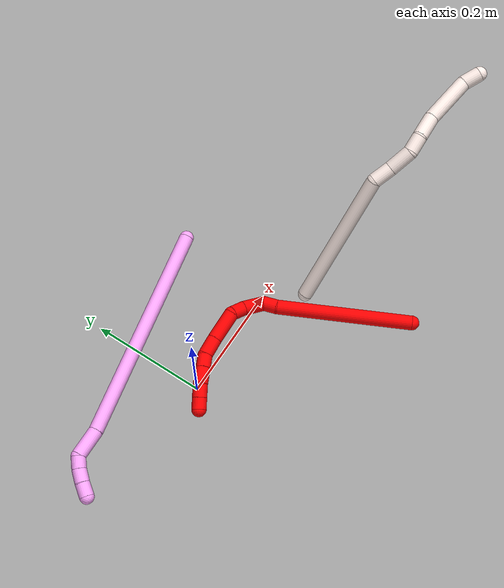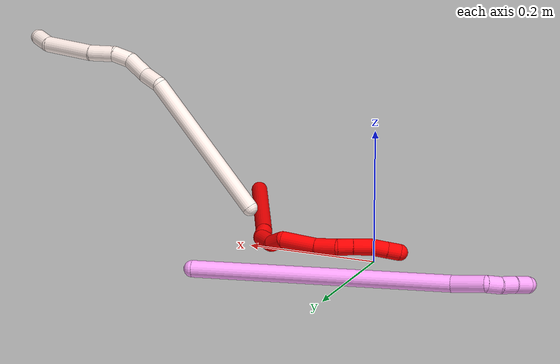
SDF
<sdf version="1.7">
 <world name="default">
  <model name="2">
   <static>0</static>
   <link name="2">
    <collision name="collision-cylinder-e_1_1_4">
     <pose>0.017732 0.05914 -0.097939 -2.59835 0.153761 -0.539691</pose>
     <geometry><cylinder><radius>0.0125</radius><length>0.231552</length></cylinder></geometry>
     <surface>
      <friction><ode><mu>1.16</mu><mu2>1.16</mu2><slip1>0</slip1><slip2>0</slip2></ode></friction>
      <contact><ode><kp>1e+06</kp><kd>1</kd><max_vel>0</max_vel><min_depth>0.001</min_depth></ode></contact>
     </surface>
    </collision>
    <visual name="visual-cylinder-e_1_1_4">
     <pose>0.017732 0.05914 -0.097939 -2.59835 0.153761 -0.539691</pose>
     <geometry><cylinder><radius>0.0125</radius><length>0.231552</length></cylinder></geometry>
     <material><ambient>1 0 0 1</ambient></material>
    </visual>
    <collision name="collision-cylinder-e_2_4_5">
     <pose>0.039132 0.12261 -0.206584 -2.7573 0.307576 -1.34555</pose>
     <geometry><cylinder><radius>0.0125</radius><length>0.024233</length></cylinder></geometry>
     <surface>
      <friction><ode><mu>1.16</mu><mu2>1.16</mu2><slip1>0</slip1><slip2>0</slip2></ode></friction>
      <contact><ode><kp>1e+06</kp><kd>1</kd><max_vel>0</max_vel><min_depth>0.001</min_depth></ode></contact>
     </surface>
    </collision>
    <visual name="visual-cylinder-e_2_4_5">
     <pose>0.039132 0.12261 -0.206584 -2.7573 0.307576 -1.34555</pose>
     <geometry><cylinder><radius>0.0125</radius><length>0.024233</length></cylinder></geometry>
     <material><ambient>1 0 0 1</ambient></material>
    </visual>
    <collision name="collision-cylinder-e_3_5_6">
     <pose>0.038891 0.137725 -0.231166 -2.48084 -0.218848 0.620039</pose>
     <geometry><cylinder><radius>0.0125</radius><length>0.036008</length></cylinder></geometry>
     <surface>
      <friction><ode><mu>1.16</mu><mu2>1.16</mu2><slip1>0</slip1><slip2>0</slip2></ode></friction>
      <contact><ode><kp>1e+06</kp><kd>1</kd><max_vel>0</max_vel><min_depth>0.001</min_depth></ode></contact>
     </surface>
    </collision>
    <visual name="visual-cylinder-e_3_5_6">
     <pose>0.038891 0.137725 -0.231166 -2.48084 -0.218848 0.620039</pose>
     <geometry><cylinder><radius>0.0125</radius><length>0.036008</length></cylinder></geometry>
     <material><ambient>1 0 0 1</ambient></material>
    </visual>
    <collision name="collision-cylinder-e_4_6_7">
     <pose>0.029958 0.160301 -0.249522 -1.93399 -0.379085 0.542576</pose>
     <geometry><cylinder><radius>0.0125</radius><length>0.027153</length></cylinder></geometry>
     <surface>
      <friction><ode><mu>1.16</mu><mu2>1.16</mu2><slip1>0</slip1><slip2>0</slip2></ode></friction>
      <contact><ode><kp>1e+06</kp><kd>1</kd><max_vel>0</max_vel><min_depth>0.001</min_depth></ode></contact>
     </surface>
    </collision>
    <visual name="visual-cylinder-e_4_6_7">
     <pose>0.029958 0.160301 -0.249522 -1.93399 -0.379085 0.542576</pose>
     <geometry><cylinder><radius>0.0125</radius><length>0.027153</length></cylinder></geometry>
     <material><ambient>1 0 0 1</ambient></material>
    </visual>
    <collision name="collision-cylinder-e_5_7_8">
     <pose>0.003154 0.183658 -0.264296 -2.29796 -0.952763 1.71002</pose>
     <geometry><cylinder><radius>0.0125</radius><length>0.053446</length></cylinder></geometry>
     <surface>
      <friction><ode><mu>1.16</mu><mu2>1.16</mu2><slip1>0</slip1><slip2>0</slip2></ode></friction>
      <contact><ode><kp>1e+06</kp><kd>1</kd><max_vel>0</max_vel><min_depth>0.001</min_depth></ode></contact>
     </surface>
    </collision>
    <visual name="visual-cylinder-e_5_7_8">
     <pose>0.003154 0.183658 -0.264296 -2.29796 -0.952763 1.71002</pose>
     <geometry><cylinder><radius>0.0125</radius><length>0.053446</length></cylinder></geometry>
     <material><ambient>1 0 0 1</ambient></material>
    </visual>
    <collision name="collision-cylinder-e_6_8_9">
     <pose>-0.032232 0.203644 -0.278775 -2.03222 -0.966158 1.40503</pose>
     <geometry><cylinder><radius>0.0125</radius><length>0.033077</length></cylinder></geometry>
     <surface>
      <friction><ode><mu>1.16</mu><mu2>1.16</mu2><slip1>0</slip1><slip2>0</slip2></ode></friction>
      <contact><ode><kp>1e+06</kp><kd>1</kd><max_vel>0</max_vel><min_depth>0.001</min_depth></ode></contact>
     </surface>
    </collision>
    <visual name="visual-cylinder-e_6_8_9">
     <pose>-0.032232 0.203644 -0.278775 -2.03222 -0.966158 1.40503</pose>
     <geometry><cylinder><radius>0.0125</radius><length>0.033077</length></cylinder></geometry>
     <material><ambient>1 0 0 1</ambient></material>
    </visual>
    <collision name="collision-cylinder-e_7_9_10">
     <pose>-0.056974 0.21577 -0.282727 -1.50793 -1.24877 1.18972</pose>
     <geometry><cylinder><radius>0.0125</radius><length>0.023478</length></cylinder></geometry>
     <surface>
      <friction><ode><mu>1.16</mu><mu2>1.16</mu2><slip1>0</slip1><slip2>0</slip2></ode></friction>
      <contact><ode><kp>1e+06</kp><kd>1</kd><max_vel>0</max_vel><min_depth>0.001</min_depth></ode></contact>
     </surface>
    </collision>
    <visual name="visual-cylinder-e_7_9_10">
     <pose>-0.056974 0.21577 -0.282727 -1.50793 -1.24877 1.18972</pose>
     <geometry><cylinder><radius>0.0125</radius><length>0.023478</length></cylinder></geometry>
     <material><ambient>1 0 0 1</ambient></material>
    </visual>
    <collision name="collision-cylinder-e_8_10_11">
     <pose>-0.081487 0.223707 -0.282733 -1.62737 -1.26417 1.31857</pose>
     <geometry><cylinder><radius>0.0125</radius><length>0.028064</length></cylinder></geometry>
     <surface>
      <friction><ode><mu>1.16</mu><mu2>1.16</mu2><slip1>0</slip1><slip2>0</slip2></ode></friction>
      <contact><ode><kp>1e+06</kp><kd>1</kd><max_vel>0</max_vel><min_depth>0.001</min_depth></ode></contact>
     </surface>
    </collision>
    <visual name="visual-cylinder-e_8_10_11">
     <pose>-0.081487 0.223707 -0.282733 -1.62737 -1.26417 1.31857</pose>
     <geometry><cylinder><radius>0.0125</radius><length>0.028064</length></cylinder></geometry>
     <material><ambient>1 0 0 1</ambient></material>
    </visual>
    <collision name="collision-cylinder-e_9_11_12">
     <pose>-0.106236 0.22877 -0.28347 -2.10788 -1.48562 2.03306</pose>
     <geometry><cylinder><radius>0.0125</radius><length>0.022827</length></cylinder></geometry>
     <surface>
      <friction><ode><mu>1.16</mu><mu2>1.16</mu2><slip1>0</slip1><slip2>0</slip2></ode></friction>
      <contact><ode><kp>1e+06</kp><kd>1</kd><max_vel>0</max_vel><min_depth>0.001</min_depth></ode></contact>
     </surface>
    </collision>
    <visual name="visual-cylinder-e_9_11_12">
     <pose>-0.106236 0.22877 -0.28347 -2.10788 -1.48562 2.03306</pose>
     <geometry><cylinder><radius>0.0125</radius><length>0.022827</length></cylinder></geometry>
     <material><ambient>1 0 0 1</ambient></material>
    </visual>
    <collision name="collision-cylinder-e_10_12_2">
     <pose>-0.127649 0.230403 -0.284392 -2.0608 -1.48091 1.97977</pose>
     <geometry><cylinder><radius>0.0125</radius><length>0.020162</length></cylinder></geometry>
     <surface>
      <friction><ode><mu>1.16</mu><mu2>1.16</mu2><slip1>0</slip1><slip2>0</slip2></ode></friction>
      <contact><ode><kp>1e+06</kp><kd>1</kd><max_vel>0</max_vel><min_depth>0.001</min_depth></ode></contact>
     </surface>
    </collision>
    <visual name="visual-cylinder-e_10_12_2">
     <pose>-0.127649 0.230403 -0.284392 -2.0608 -1.48091 1.97977</pose>
     <geometry><cylinder><radius>0.0125</radius><length>0.020162</length></cylinder></geometry>
     <material><ambient>1 0 0 1</ambient></material>
    </visual>
    <collision name="collision-sphere-2">
     <pose>-0.137689 0.231201 -0.284818 0 -0 0</pose>
     <geometry><sphere><radius>0.0125</radius></sphere></geometry>
     <surface>
      <friction><ode><mu>1.16</mu><mu2>1.16</mu2><slip1>0</slip1><slip2>0</slip2></ode></friction>
      <contact><ode><kp>1e+06</kp><kd>1</kd><max_vel>0</max_vel><min_depth>0.001</min_depth></ode></contact>
     </surface>
    </collision>
    <visual name="visual-sphere-2">
     <pose>-0.137689 0.231201 -0.284818 0 -0 0</pose>
     <geometry><sphere><radius>0.0125</radius></sphere></geometry>
     <material><ambient>1 0 0 1</ambient></material>
    </visual>
    <collision name="collision-sphere-12">
     <pose>-0.117608 0.229604 -0.283966 0 -0 0</pose>
     <geometry><sphere><radius>0.0125</radius></sphere></geometry>
     <surface>
      <friction><ode><mu>1.16</mu><mu2>1.16</mu2><slip1>0</slip1><slip2>0</slip2></ode></friction>
      <contact><ode><kp>1e+06</kp><kd>1</kd><max_vel>0</max_vel><min_depth>0.001</min_depth></ode></contact>
     </surface>
    </collision>
    <visual name="visual-sphere-12">
     <pose>-0.117608 0.229604 -0.283966 0 -0 0</pose>
     <geometry><sphere><radius>0.0125</radius></sphere></geometry>
     <material><ambient>1 0 0 1</ambient></material>
    </visual>
    <collision name="collision-sphere-11">
     <pose>-0.094864 0.227936 -0.282973 0 -0 0</pose>
     <geometry><sphere><radius>0.0125</radius></sphere></geometry>
     <surface>
      <friction><ode><mu>1.16</mu><mu2>1.16</mu2><slip1>0</slip1><slip2>0</slip2></ode></friction>
      <contact><ode><kp>1e+06</kp><kd>1</kd><max_vel>0</max_vel><min_depth>0.001</min_depth></ode></contact>
     </surface>
    </collision>
    <visual name="visual-sphere-11">
     <pose>-0.094864 0.227936 -0.282973 0 -0 0</pose>
     <geometry><sphere><radius>0.0125</radius></sphere></geometry>
     <material><ambient>1 0 0 1</ambient></material>
    </visual>
    <collision name="collision-sphere-10">
     <pose>-0.068109 0.219478 -0.282494 0 -0 0</pose>
     <geometry><sphere><radius>0.0125</radius></sphere></geometry>
     <surface>
      <friction><ode><mu>1.16</mu><mu2>1.16</mu2><slip1>0</slip1><slip2>0</slip2></ode></friction>
      <contact><ode><kp>1e+06</kp><kd>1</kd><max_vel>0</max_vel><min_depth>0.001</min_depth></ode></contact>
     </surface>
    </collision>
    <visual name="visual-sphere-10">
     <pose>-0.068109 0.219478 -0.282494 0 -0 0</pose>
     <geometry><sphere><radius>0.0125</radius></sphere></geometry>
     <material><ambient>1 0 0 1</ambient></material>
    </visual>
    <collision name="collision-sphere-9">
     <pose>-0.045838 0.212062 -0.282961 0 -0 0</pose>
     <geometry><sphere><radius>0.0125</radius></sphere></geometry>
     <surface>
      <friction><ode><mu>1.16</mu><mu2>1.16</mu2><slip1>0</slip1><slip2>0</slip2></ode></friction>
      <contact><ode><kp>1e+06</kp><kd>1</kd><max_vel>0</max_vel><min_depth>0.001</min_depth></ode></contact>
     </surface>
    </collision>
    <visual name="visual-sphere-9">
     <pose>-0.045838 0.212062 -0.282961 0 -0 0</pose>
     <geometry><sphere><radius>0.0125</radius></sphere></geometry>
     <material><ambient>1 0 0 1</ambient></material>
    </visual>
    <collision name="collision-sphere-4">
     <pose>0.035463 0.11828 -0.195878 0 -0 0</pose>
     <geometry><sphere><radius>0.0125</radius></sphere></geometry>
     <surface>
      <friction><ode><mu>1.16</mu><mu2>1.16</mu2><slip1>0</slip1><slip2>0</slip2></ode></friction>
      <contact><ode><kp>1e+06</kp><kd>1</kd><max_vel>0</max_vel><min_depth>0.001</min_depth></ode></contact>
     </surface>
    </collision>
    <visual name="visual-sphere-4">
     <pose>0.035463 0.11828 -0.195878 0 -0 0</pose>
     <geometry><sphere><radius>0.0125</radius></sphere></geometry>
     <material><ambient>1 0 0 1</ambient></material>
    </visual>
    <collision name="collision-sphere-1">
     <geometry><sphere><radius>0.0125</radius></sphere></geometry>
     <surface>
      <friction><ode><mu>1.16</mu><mu2>1.16</mu2><slip1>0</slip1><slip2>0</slip2></ode></friction>
      <contact><ode><kp>1e+06</kp><kd>1</kd><max_vel>0</max_vel><min_depth>0.001</min_depth></ode></contact>
     </surface>
    </collision>
    <visual name="visual-sphere-1">
     <geometry><sphere><radius>0.0125</radius></sphere></geometry>
     <material><ambient>1 0 0 1</ambient></material>
    </visual>
    <collision name="collision-sphere-8">
     <pose>-0.018626 0.195226 -0.274589 0 -0 0</pose>
     <geometry><sphere><radius>0.0125</radius></sphere></geometry>
     <surface>
      <friction><ode><mu>1.16</mu><mu2>1.16</mu2><slip1>0</slip1><slip2>0</slip2></ode></friction>
      <contact><ode><kp>1e+06</kp><kd>1</kd><max_vel>0</max_vel><min_depth>0.001</min_depth></ode></contact>
     </surface>
    </collision>
    <visual name="visual-sphere-8">
     <pose>-0.018626 0.195226 -0.274589 0 -0 0</pose>
     <geometry><sphere><radius>0.0125</radius></sphere></geometry>
     <material><ambient>1 0 0 1</ambient></material>
    </visual>
    <collision name="collision-sphere-5">
     <pose>0.0428 0.126939 -0.21729 0 -0 0</pose>
     <geometry><sphere><radius>0.0125</radius></sphere></geometry>
     <surface>
      <friction><ode><mu>1.16</mu><mu2>1.16</mu2><slip1>0</slip1><slip2>0</slip2></ode></friction>
      <contact><ode><kp>1e+06</kp><kd>1</kd><max_vel>0</max_vel><min_depth>0.001</min_depth></ode></contact>
     </surface>
    </collision>
    <visual name="visual-sphere-5">
     <pose>0.0428 0.126939 -0.21729 0 -0 0</pose>
     <geometry><sphere><radius>0.0125</radius></sphere></geometry>
     <material><ambient>1 0 0 1</ambient></material>
    </visual>
    <collision name="collision-sphere-6">
     <pose>0.034982 0.148511 -0.245041 0 -0 0</pose>
     <geometry><sphere><radius>0.0125</radius></sphere></geometry>
     <surface>
      <friction><ode><mu>1.16</mu><mu2>1.16</mu2><slip1>0</slip1><slip2>0</slip2></ode></friction>
      <contact><ode><kp>1e+06</kp><kd>1</kd><max_vel>0</max_vel><min_depth>0.001</min_depth></ode></contact>
     </surface>
    </collision>
    <visual name="visual-sphere-6">
     <pose>0.034982 0.148511 -0.245041 0 -0 0</pose>
     <geometry><sphere><radius>0.0125</radius></sphere></geometry>
     <material><ambient>1 0 0 1</ambient></material>
    </visual>
    <collision name="collision-sphere-7">
     <pose>0.024934 0.172091 -0.254003 0 -0 0</pose>
     <geometry><sphere><radius>0.0125</radius></sphere></geometry>
     <surface>
      <friction><ode><mu>1.16</mu><mu2>1.16</mu2><slip1>0</slip1><slip2>0</slip2></ode></friction>
      <contact><ode><kp>1e+06</kp><kd>1</kd><max_vel>0</max_vel><min_depth>0.001</min_depth></ode></contact>
     </surface>
    </collision>
    <visual name="visual-sphere-7">
     <pose>0.024934 0.172091 -0.254003 0 -0 0</pose>
     <geometry><sphere><radius>0.0125</radius></sphere></geometry>
     <material><ambient>1 0 0 1</ambient></material>
    </visual>
    <inertial>
     <pose>-0.004506 0.127481 -0.185814 0 -0 0</pose>
     <mass>0.5</mass>
     <inertia>
      <ixx>0.000365</ixx>
      <ixy>0</ixy>
      <ixz>0</ixz>
      <iyy>-0.001204</iyy>
      <iyz>0</iyz>
      <izz>-0.000707</izz>
     </inertia>
    </inertial>
   </link>
   <pose>0.293817 -0.24317 0.013495 0.986913 -0.268938 0.607638</pose>
  </model>
  <model name="4">
   <static>0</static>
   <link name="4">
    <collision name="collision-cylinder-e_1_1_4">
     <pose>0.008965 -0.001687 -0.190029 3.13271 0.047139 2.76932</pose>
     <geometry><cylinder><radius>0.0125</radius><length>0.380496</length></cylinder></geometry>
     <surface>
      <friction><ode><mu>1.16</mu><mu2>1.16</mu2><slip1>0</slip1><slip2>0</slip2></ode></friction>
      <contact><ode><kp>1e+06</kp><kd>1</kd><max_vel>0</max_vel><min_depth>0.001</min_depth></ode></contact>
     </surface>
    </collision>
    <visual name="visual-cylinder-e_1_1_4">
     <pose>0.008965 -0.001687 -0.190029 3.13271 0.047139 2.76932</pose>
     <geometry><cylinder><radius>0.0125</radius><length>0.380496</length></cylinder></geometry>
     <material><ambient>1 0.65098 0.996078 1</ambient></material>
    </visual>
    <collision name="collision-cylinder-e_2_4_5">
     <pose>0.021589 0.000294 -0.404975 -2.99542 0.144276 -1.55767</pose>
     <geometry><cylinder><radius>0.0125</radius><length>0.0509</length></cylinder></geometry>
     <surface>
      <friction><ode><mu>1.16</mu><mu2>1.16</mu2><slip1>0</slip1><slip2>0</slip2></ode></friction>
      <contact><ode><kp>1e+06</kp><kd>1</kd><max_vel>0</max_vel><min_depth>0.001</min_depth></ode></contact>
     </surface>
    </collision>
    <visual name="visual-cylinder-e_2_4_5">
     <pose>0.021589 0.000294 -0.404975 -2.99542 0.144276 -1.55767</pose>
     <geometry><cylinder><radius>0.0125</radius><length>0.0509</length></cylinder></geometry>
     <material><ambient>1 0.65098 0.996078 1</ambient></material>
    </visual>
    <collision name="collision-cylinder-e_3_5_6">
     <pose>0.022127 3.3e-05 -0.439489 2.75296 -0.292284 -1.28435</pose>
     <geometry><cylinder><radius>0.0125</radius><length>0.021658</length></cylinder></geometry>
     <surface>
      <friction><ode><mu>1.16</mu><mu2>1.16</mu2><slip1>0</slip1><slip2>0</slip2></ode></friction>
      <contact><ode><kp>1e+06</kp><kd>1</kd><max_vel>0</max_vel><min_depth>0.001</min_depth></ode></contact>
     </surface>
    </collision>
    <visual name="visual-cylinder-e_3_5_6">
     <pose>0.022127 3.3e-05 -0.439489 2.75296 -0.292284 -1.28435</pose>
     <geometry><cylinder><radius>0.0125</radius><length>0.021658</length></cylinder></geometry>
     <material><ambient>1 0.65098 0.996078 1</ambient></material>
    </visual>
    <collision name="collision-cylinder-e_4_6_7">
     <pose>0.013596 -0.007929 -0.458536 2.73832 -0.484717 -1.75978</pose>
     <geometry><cylinder><radius>0.0125</radius><length>0.023226</length></cylinder></geometry>
     <surface>
      <friction><ode><mu>1.16</mu><mu2>1.16</mu2><slip1>0</slip1><slip2>0</slip2></ode></friction>
      <contact><ode><kp>1e+06</kp><kd>1</kd><max_vel>0</max_vel><min_depth>0.001</min_depth></ode></contact>
     </surface>
    </collision>
    <visual name="visual-cylinder-e_4_6_7">
     <pose>0.013596 -0.007929 -0.458536 2.73832 -0.484717 -1.75978</pose>
     <geometry><cylinder><radius>0.0125</radius><length>0.023226</length></cylinder></geometry>
     <material><ambient>1 0.65098 0.996078 1</ambient></material>
    </visual>
    <collision name="collision-cylinder-e_5_7_2">
     <pose>0.002418 -0.017253 -0.476897 2.60562 -0.50782 -1.51433</pose>
     <geometry><cylinder><radius>0.0125</radius><length>0.02372</length></cylinder></geometry>
     <surface>
      <friction><ode><mu>1.16</mu><mu2>1.16</mu2><slip1>0</slip1><slip2>0</slip2></ode></friction>
      <contact><ode><kp>1e+06</kp><kd>1</kd><max_vel>0</max_vel><min_depth>0.001</min_depth></ode></contact>
     </surface>
    </collision>
    <visual name="visual-cylinder-e_5_7_2">
     <pose>0.002418 -0.017253 -0.476897 2.60562 -0.50782 -1.51433</pose>
     <geometry><cylinder><radius>0.0125</radius><length>0.02372</length></cylinder></geometry>
     <material><ambient>1 0.65098 0.996078 1</ambient></material>
    </visual>
    <collision name="collision-sphere-2">
     <pose>-0.00335 -0.022546 -0.485807 0 -0 0</pose>
     <geometry><sphere><radius>0.0125</radius></sphere></geometry>
     <surface>
      <friction><ode><mu>1.16</mu><mu2>1.16</mu2><slip1>0</slip1><slip2>0</slip2></ode></friction>
      <contact><ode><kp>1e+06</kp><kd>1</kd><max_vel>0</max_vel><min_depth>0.001</min_depth></ode></contact>
     </surface>
    </collision>
    <visual name="visual-sphere-2">
     <pose>-0.00335 -0.022546 -0.485807 0 -0 0</pose>
     <geometry><sphere><radius>0.0125</radius></sphere></geometry>
     <material><ambient>1 0.65098 0.996078 1</ambient></material>
    </visual>
    <collision name="collision-sphere-7">
     <pose>0.008185 -0.011961 -0.467988 0 -0 0</pose>
     <geometry><sphere><radius>0.0125</radius></sphere></geometry>
     <surface>
      <friction><ode><mu>1.16</mu><mu2>1.16</mu2><slip1>0</slip1><slip2>0</slip2></ode></friction>
      <contact><ode><kp>1e+06</kp><kd>1</kd><max_vel>0</max_vel><min_depth>0.001</min_depth></ode></contact>
     </surface>
    </collision>
    <visual name="visual-sphere-7">
     <pose>0.008185 -0.011961 -0.467988 0 -0 0</pose>
     <geometry><sphere><radius>0.0125</radius></sphere></geometry>
     <material><ambient>1 0.65098 0.996078 1</ambient></material>
    </visual>
    <collision name="collision-sphere-6">
     <pose>0.019007 -0.003896 -0.449085 0 -0 0</pose>
     <geometry><sphere><radius>0.0125</radius></sphere></geometry>
     <surface>
      <friction><ode><mu>1.16</mu><mu2>1.16</mu2><slip1>0</slip1><slip2>0</slip2></ode></friction>
      <contact><ode><kp>1e+06</kp><kd>1</kd><max_vel>0</max_vel><min_depth>0.001</min_depth></ode></contact>
     </surface>
    </collision>
    <visual name="visual-sphere-6">
     <pose>0.019007 -0.003896 -0.449085 0 -0 0</pose>
     <geometry><sphere><radius>0.0125</radius></sphere></geometry>
     <material><ambient>1 0.65098 0.996078 1</ambient></material>
    </visual>
    <collision name="collision-sphere-5">
     <pose>0.025248 0.003962 -0.429893 0 -0 0</pose>
     <geometry><sphere><radius>0.0125</radius></sphere></geometry>
     <surface>
      <friction><ode><mu>1.16</mu><mu2>1.16</mu2><slip1>0</slip1><slip2>0</slip2></ode></friction>
      <contact><ode><kp>1e+06</kp><kd>1</kd><max_vel>0</max_vel><min_depth>0.001</min_depth></ode></contact>
     </surface>
    </collision>
    <visual name="visual-sphere-5">
     <pose>0.025248 0.003962 -0.429893 0 -0 0</pose>
     <geometry><sphere><radius>0.0125</radius></sphere></geometry>
     <material><ambient>1 0.65098 0.996078 1</ambient></material>
    </visual>
    <collision name="collision-sphere-1">
     <geometry><sphere><radius>0.0125</radius></sphere></geometry>
     <surface>
      <friction><ode><mu>1.16</mu><mu2>1.16</mu2><slip1>0</slip1><slip2>0</slip2></ode></friction>
      <contact><ode><kp>1e+06</kp><kd>1</kd><max_vel>0</max_vel><min_depth>0.001</min_depth></ode></contact>
     </surface>
    </collision>
    <visual name="visual-sphere-1">
     <geometry><sphere><radius>0.0125</radius></sphere></geometry>
     <material><ambient>1 0.65098 0.996078 1</ambient></material>
    </visual>
    <collision name="collision-sphere-4">
     <pose>0.017929 -0.003374 -0.380058 0 -0 0</pose>
     <geometry><sphere><radius>0.0125</radius></sphere></geometry>
     <surface>
      <friction><ode><mu>1.16</mu><mu2>1.16</mu2><slip1>0</slip1><slip2>0</slip2></ode></friction>
      <contact><ode><kp>1e+06</kp><kd>1</kd><max_vel>0</max_vel><min_depth>0.001</min_depth></ode></contact>
     </surface>
    </collision>
    <visual name="visual-sphere-4">
     <pose>0.017929 -0.003374 -0.380058 0 -0 0</pose>
     <geometry><sphere><radius>0.0125</radius></sphere></geometry>
     <material><ambient>1 0.65098 0.996078 1</ambient></material>
    </visual>
    <inertial>
     <pose>0.010725 -0.002439 -0.248798 0 -0 0</pose>
     <mass>0.5</mass>
     <inertia>
      <ixx>-0.00263</ixx>
      <ixy>0</ixy>
      <ixz>0</ixz>
      <iyy>0.005945</iyy>
      <iyz>0</iyz>
      <izz>-0.000213</izz>
     </inertia>
    </inertial>
   </link>
   <pose>0.217213 0.169997 0.011499 1.61407 0.422897 1.82275</pose>
  </model>
  <model name="11">
   <static>0</static>
   <link name="11">
    <collision name="collision-cylinder-e_1_1_4">
     <pose>-0.013576 0.016569 0.118617 -0.138789 -0.11287 0.007853</pose>
     <geometry><cylinder><radius>0.0125</radius><length>0.241071</length></cylinder></geometry>
     <surface>
      <friction><ode><mu>1.16</mu><mu2>1.16</mu2><slip1>0</slip1><slip2>0</slip2></ode></friction>
      <contact><ode><kp>1e+06</kp><kd>1</kd><max_vel>0</max_vel><min_depth>0.001</min_depth></ode></contact>
     </surface>
    </collision>
    <visual name="visual-cylinder-e_1_1_4">
     <pose>-0.013576 0.016569 0.118617 -0.138789 -0.11287 0.007853</pose>
     <geometry><cylinder><radius>0.0125</radius><length>0.241071</length></cylinder></geometry>
     <material><ambient>1 0.933333 0.909804 1</ambient></material>
    </visual>
    <collision name="collision-cylinder-e_2_4_5">
     <pose>-0.019897 0.033203 0.252424 -0.004239 0.445603 -0.00096</pose>
     <geometry><cylinder><radius>0.0125</radius><length>0.033667</length></cylinder></geometry>
     <surface>
      <friction><ode><mu>1.16</mu><mu2>1.16</mu2><slip1>0</slip1><slip2>0</slip2></ode></friction>
      <contact><ode><kp>1e+06</kp><kd>1</kd><max_vel>0</max_vel><min_depth>0.001</min_depth></ode></contact>
     </surface>
    </collision>
    <visual name="visual-cylinder-e_2_4_5">
     <pose>-0.019897 0.033203 0.252424 -0.004239 0.445603 -0.00096</pose>
     <geometry><cylinder><radius>0.0125</radius><length>0.033667</length></cylinder></geometry>
     <material><ambient>1 0.933333 0.909804 1</ambient></material>
    </visual>
    <collision name="collision-cylinder-e_3_5_6">
     <pose>-0.006808 0.033138 0.287285 0.006599 0.288248 0.000958</pose>
     <geometry><cylinder><radius>0.0125</radius><length>0.041038</length></cylinder></geometry>
     <surface>
      <friction><ode><mu>1.16</mu><mu2>1.16</mu2><slip1>0</slip1><slip2>0</slip2></ode></friction>
      <contact><ode><kp>1e+06</kp><kd>1</kd><max_vel>0</max_vel><min_depth>0.001</min_depth></ode></contact>
     </surface>
    </collision>
    <visual name="visual-cylinder-e_3_5_6">
     <pose>-0.006808 0.033138 0.287285 0.006599 0.288248 0.000958</pose>
     <geometry><cylinder><radius>0.0125</radius><length>0.041038</length></cylinder></geometry>
     <material><ambient>1 0.933333 0.909804 1</ambient></material>
    </visual>
    <collision name="collision-cylinder-e_4_6_7">
     <pose>0.004377 0.038864 0.31939 -0.4402 0.371395 -0.084009</pose>
     <geometry><cylinder><radius>0.0125</radius><length>0.029496</length></cylinder></geometry>
     <surface>
      <friction><ode><mu>1.16</mu><mu2>1.16</mu2><slip1>0</slip1><slip2>0</slip2></ode></friction>
      <contact><ode><kp>1e+06</kp><kd>1</kd><max_vel>0</max_vel><min_depth>0.001</min_depth></ode></contact>
     </surface>
    </collision>
    <visual name="visual-cylinder-e_4_6_7">
     <pose>0.004377 0.038864 0.31939 -0.4402 0.371395 -0.084009</pose>
     <geometry><cylinder><radius>0.0125</radius><length>0.029496</length></cylinder></geometry>
     <material><ambient>1 0.933333 0.909804 1</ambient></material>
    </visual>
    <collision name="collision-cylinder-e_5_7_8">
     <pose>0.021573 0.054522 0.345321 -0.628084 0.617381 -0.206405</pose>
     <geometry><cylinder><radius>0.0125</radius><length>0.04092</length></cylinder></geometry>
     <surface>
      <friction><ode><mu>1.16</mu><mu2>1.16</mu2><slip1>0</slip1><slip2>0</slip2></ode></friction>
      <contact><ode><kp>1e+06</kp><kd>1</kd><max_vel>0</max_vel><min_depth>0.001</min_depth></ode></contact>
     </surface>
    </collision>
    <visual name="visual-cylinder-e_5_7_8">
     <pose>0.021573 0.054522 0.345321 -0.628084 0.617381 -0.206405</pose>
     <geometry><cylinder><radius>0.0125</radius><length>0.04092</length></cylinder></geometry>
     <material><ambient>1 0.933333 0.909804 1</ambient></material>
    </visual>
    <collision name="collision-cylinder-e_6_8_9">
     <pose>0.057538 0.076676 0.390779 -0.368793 0.613395 -0.117998</pose>
     <geometry><cylinder><radius>0.0125</radius><length>0.083804</length></cylinder></geometry>
     <surface>
      <friction><ode><mu>1.16</mu><mu2>1.16</mu2><slip1>0</slip1><slip2>0</slip2></ode></friction>
      <contact><ode><kp>1e+06</kp><kd>1</kd><max_vel>0</max_vel><min_depth>0.001</min_depth></ode></contact>
     </surface>
    </collision>
    <visual name="visual-cylinder-e_6_8_9">
     <pose>0.057538 0.076676 0.390779 -0.368793 0.613395 -0.117998</pose>
     <geometry><cylinder><radius>0.0125</radius><length>0.083804</length></cylinder></geometry>
     <material><ambient>1 0.933333 0.909804 1</ambient></material>
    </visual>
    <collision name="collision-cylinder-e_7_9_2">
     <pose>0.089213 0.087714 0.435633 0.101522 0.52771 0.027448</pose>
     <geometry><cylinder><radius>0.0125</radius><length>0.030005</length></cylinder></geometry>
     <surface>
      <friction><ode><mu>1.16</mu><mu2>1.16</mu2><slip1>0</slip1><slip2>0</slip2></ode></friction>
      <contact><ode><kp>1e+06</kp><kd>1</kd><max_vel>0</max_vel><min_depth>0.001</min_depth></ode></contact>
     </surface>
    </collision>
    <visual name="visual-cylinder-e_7_9_2">
     <pose>0.089213 0.087714 0.435633 0.101522 0.52771 0.027448</pose>
     <geometry><cylinder><radius>0.0125</radius><length>0.030005</length></cylinder></geometry>
     <material><ambient>1 0.933333 0.909804 1</ambient></material>
    </visual>
    <collision name="collision-sphere-2">
     <pose>0.096768 0.086401 0.448528 0 -0 0</pose>
     <geometry><sphere><radius>0.0125</radius></sphere></geometry>
     <surface>
      <friction><ode><mu>1.16</mu><mu2>1.16</mu2><slip1>0</slip1><slip2>0</slip2></ode></friction>
      <contact><ode><kp>1e+06</kp><kd>1</kd><max_vel>0</max_vel><min_depth>0.001</min_depth></ode></contact>
     </surface>
    </collision>
    <visual name="visual-sphere-2">
     <pose>0.096768 0.086401 0.448528 0 -0 0</pose>
     <geometry><sphere><radius>0.0125</radius></sphere></geometry>
     <material><ambient>1 0.933333 0.909804 1</ambient></material>
    </visual>
    <collision name="collision-sphere-9">
     <pose>0.081659 0.089028 0.422739 0 -0 0</pose>
     <geometry><sphere><radius>0.0125</radius></sphere></geometry>
     <surface>
      <friction><ode><mu>1.16</mu><mu2>1.16</mu2><slip1>0</slip1><slip2>0</slip2></ode></friction>
      <contact><ode><kp>1e+06</kp><kd>1</kd><max_vel>0</max_vel><min_depth>0.001</min_depth></ode></contact>
     </surface>
    </collision>
    <visual name="visual-sphere-9">
     <pose>0.081659 0.089028 0.422739 0 -0 0</pose>
     <geometry><sphere><radius>0.0125</radius></sphere></geometry>
     <material><ambient>1 0.933333 0.909804 1</ambient></material>
    </visual>
    <collision name="collision-sphere-4">
     <pose>-0.027152 0.033139 0.237234 0 -0 0</pose>
     <geometry><sphere><radius>0.0125</radius></sphere></geometry>
     <surface>
      <friction><ode><mu>1.16</mu><mu2>1.16</mu2><slip1>0</slip1><slip2>0</slip2></ode></friction>
      <contact><ode><kp>1e+06</kp><kd>1</kd><max_vel>0</max_vel><min_depth>0.001</min_depth></ode></contact>
     </surface>
    </collision>
    <visual name="visual-sphere-4">
     <pose>-0.027152 0.033139 0.237234 0 -0 0</pose>
     <geometry><sphere><radius>0.0125</radius></sphere></geometry>
     <material><ambient>1 0.933333 0.909804 1</ambient></material>
    </visual>
    <collision name="collision-sphere-1">
     <geometry><sphere><radius>0.0125</radius></sphere></geometry>
     <surface>
      <friction><ode><mu>1.16</mu><mu2>1.16</mu2><slip1>0</slip1><slip2>0</slip2></ode></friction>
      <contact><ode><kp>1e+06</kp><kd>1</kd><max_vel>0</max_vel><min_depth>0.001</min_depth></ode></contact>
     </surface>
    </collision>
    <visual name="visual-sphere-1">
     <geometry><sphere><radius>0.0125</radius></sphere></geometry>
     <material><ambient>1 0.933333 0.909804 1</ambient></material>
    </visual>
    <collision name="collision-sphere-8">
     <pose>0.033417 0.064325 0.35882 0 -0 0</pose>
     <geometry><sphere><radius>0.0125</radius></sphere></geometry>
     <surface>
      <friction><ode><mu>1.16</mu><mu2>1.16</mu2><slip1>0</slip1><slip2>0</slip2></ode></friction>
      <contact><ode><kp>1e+06</kp><kd>1</kd><max_vel>0</max_vel><min_depth>0.001</min_depth></ode></contact>
     </surface>
    </collision>
    <visual name="visual-sphere-8">
     <pose>0.033417 0.064325 0.35882 0 -0 0</pose>
     <geometry><sphere><radius>0.0125</radius></sphere></geometry>
     <material><ambient>1 0.933333 0.909804 1</ambient></material>
    </visual>
    <collision name="collision-sphere-5">
     <pose>-0.012641 0.033267 0.267613 0 -0 0</pose>
     <geometry><sphere><radius>0.0125</radius></sphere></geometry>
     <surface>
      <friction><ode><mu>1.16</mu><mu2>1.16</mu2><slip1>0</slip1><slip2>0</slip2></ode></friction>
      <contact><ode><kp>1e+06</kp><kd>1</kd><max_vel>0</max_vel><min_depth>0.001</min_depth></ode></contact>
     </surface>
    </collision>
    <visual name="visual-sphere-5">
     <pose>-0.012641 0.033267 0.267613 0 -0 0</pose>
     <geometry><sphere><radius>0.0125</radius></sphere></geometry>
     <material><ambient>1 0.933333 0.909804 1</ambient></material>
    </visual>
    <collision name="collision-sphere-6">
     <pose>-0.000975 0.033008 0.306957 0 -0 0</pose>
     <geometry><sphere><radius>0.0125</radius></sphere></geometry>
     <surface>
      <friction><ode><mu>1.16</mu><mu2>1.16</mu2><slip1>0</slip1><slip2>0</slip2></ode></friction>
      <contact><ode><kp>1e+06</kp><kd>1</kd><max_vel>0</max_vel><min_depth>0.001</min_depth></ode></contact>
     </surface>
    </collision>
    <visual name="visual-sphere-6">
     <pose>-0.000975 0.033008 0.306957 0 -0 0</pose>
     <geometry><sphere><radius>0.0125</radius></sphere></geometry>
     <material><ambient>1 0.933333 0.909804 1</ambient></material>
    </visual>
    <collision name="collision-sphere-7">
     <pose>0.009729 0.044719 0.331822 0 -0 0</pose>
     <geometry><sphere><radius>0.0125</radius></sphere></geometry>
     <surface>
      <friction><ode><mu>1.16</mu><mu2>1.16</mu2><slip1>0</slip1><slip2>0</slip2></ode></friction>
      <contact><ode><kp>1e+06</kp><kd>1</kd><max_vel>0</max_vel><min_depth>0.001</min_depth></ode></contact>
     </surface>
    </collision>
    <visual name="visual-sphere-7">
     <pose>0.009729 0.044719 0.331822 0 -0 0</pose>
     <geometry><sphere><radius>0.0125</radius></sphere></geometry>
     <material><ambient>1 0.933333 0.909804 1</ambient></material>
    </visual>
    <inertial>
     <pose>0.008577 0.037814 0.236508 0 -0 0</pose>
     <mass>0.5</mass>
     <inertia>
      <ixx>0.001245</ixx>
      <ixy>0</ixy>
      <ixz>0</ixz>
      <iyy>0.00125</iyy>
      <iyz>0</iyz>
      <izz>-5.5e-05</izz>
     </inertia>
    </inertial>
   </link>
   <pose>0.231566 -0.066598 0.038095 -0.14947 0.832624 -0.559623</pose>
  </model>
 </world>
</sdf>
